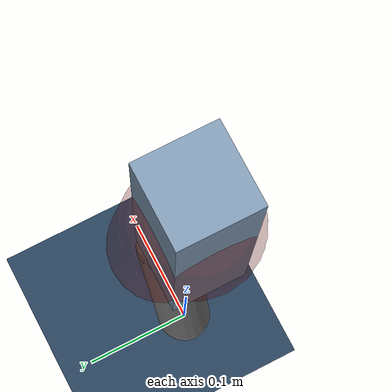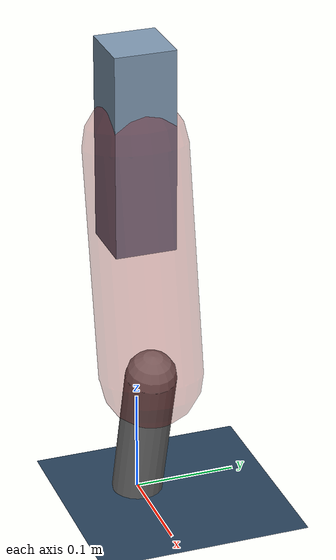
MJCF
<mujoco model="Hopper2D">
	<compiler inertiafromgeom="true" angle="radian" />
	<option timestep="0.001" integrator="implicit" cone="elliptic" solver="Newton" tolerance="1e-10" />

	<default>
		<geom contype="1" conaffinity="1" condim="3" friction="2 0.005 0.0001" solref="0.005 1" />
		<joint limited="true" damping="0.1" />
	</default>

	<asset>
		<texture name="skybox" type="skybox" builtin="gradient" rgb1=".4 .6 .8" rgb2="0 0 0" width="800" height="800" />
		<texture name="grid" type="2d" builtin="checker" rgb1=".1 .2 .3" rgb2=".2 .3 .4" width="300" height="300" mark="edge" markrgb=".2 .3 .4" />
		<material name="ground" texture="grid" texrepeat="1 1" texuniform="true" reflectance="0.1" />
		<material name="leg" rgba="0.5 0.6 0.7 1" />
	</asset>

	<worldbody>

		<geom name="floor" type="plane" size="5 5 0.25" material="ground" />

		<light directional="false" diffuse="0.8 0.8 0.8" specular="0.3 0.3 0.3" pos="0 0 2" dir="0 0 -1" />
		<light mode="targetbodycom" target="base" directional="false" diffuse="0.8 0.8 0.8" specular="0.3 0.3 0.3" pos="0 0 2" dir="0 0 -1" />

		<camera name="fixed" pos="0 -2 1" xyaxes="1 0 0 0 0 1" />
		<camera name="tracking" mode="trackcom" pos="0 -3 1" />

		<body name="root" pos="0 0 0.3681155826553437">
			<joint name="slide_x" type="slide" axis="1 0 0" range="-100 100" />
			<joint name="slide_z" type="slide" axis="0 0 1" range="0 10" />

			<body name="base" pos="0 0 0">
				<geom name="torso" type="box" size="0.03 0.03 0.1" mass="1.887" material="leg" />

				<body name="link1" pos="0 0 0" euler="0 1.383196854571847 0">
					<joint type="hinge" axis="0 -1 0" pos="0 0 0" name="hinge1" limited="true" range="-3.14 3.14" stiffness="0" damping="0.1" />
					<geom name="thigh" type="capsule" fromto="0 0 0 0.22669844742374606 0 0" size="0.05" rgba="0.5 0 0 0.3" mass="0.7966461185593652" />

					<body name="link2" pos="0.22669844742374606 0 0" euler="0 0.4705866814398662 0">
						<joint type="hinge" axis="0 -1 0" pos="0 0 0" name="hinge2" limited="true" range="-3.14 3.14" stiffness="0" damping="0.1" />
						<geom name="shank" type="capsule" fromto="0 0 0 0.15141713523159764 0 0" size="0.025" mass="0.3589754217084379" />

					</body>
				</body>
			</body>
		</body>
	</worldbody>

	<actuator>
		<motor name="torque1" joint="hinge1" ctrlrange="-61.946068230628896 61.946068230628896" ctrllimited="true" gear="1" />
		<motor name="torque2" joint="hinge2" ctrlrange="-42.976176280648815 42.976176280648815" ctrllimited="true" gear="1" />
	</actuator>
</mujoco>
